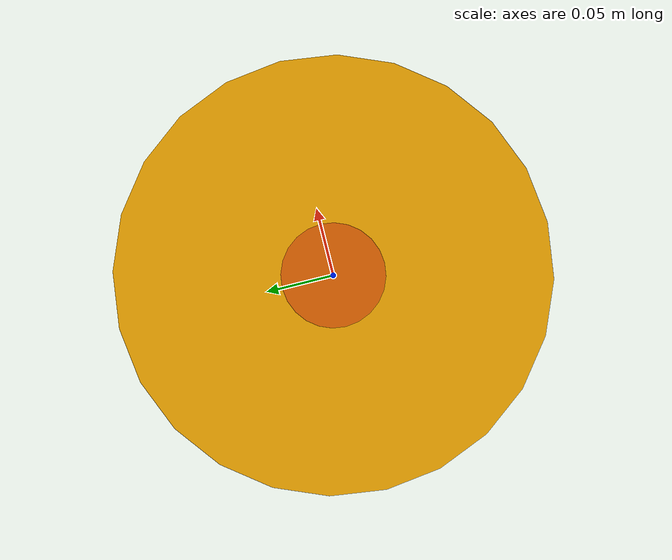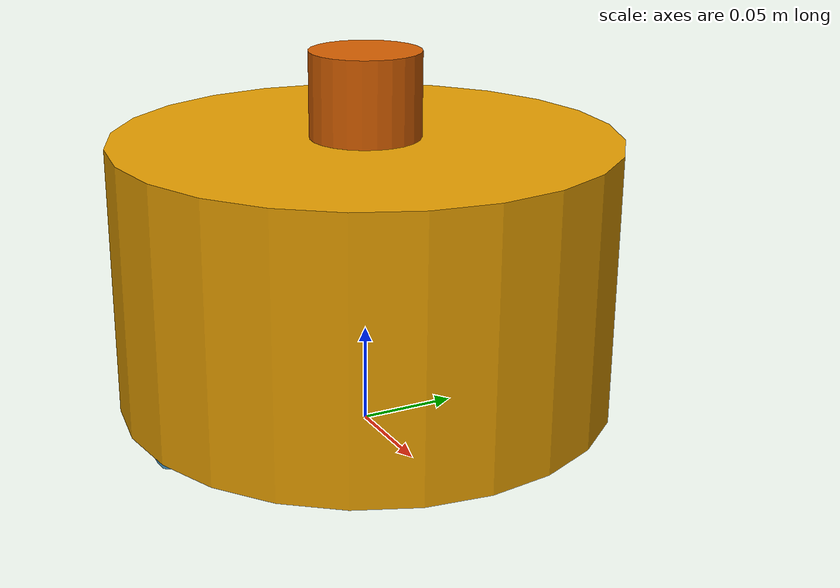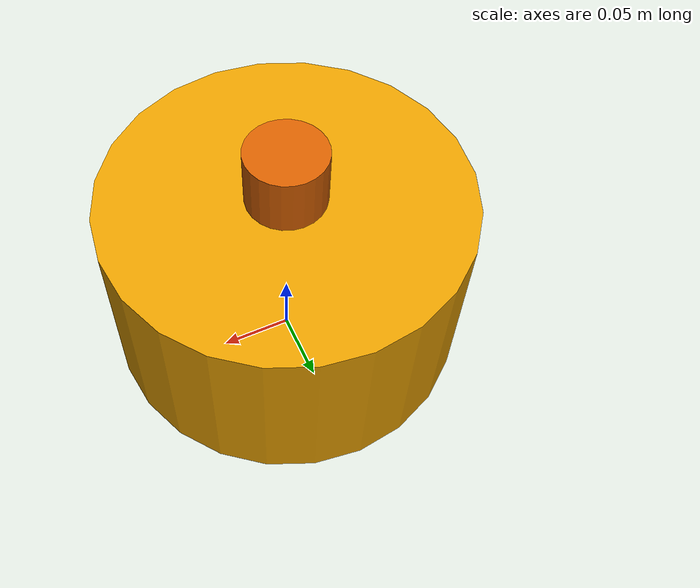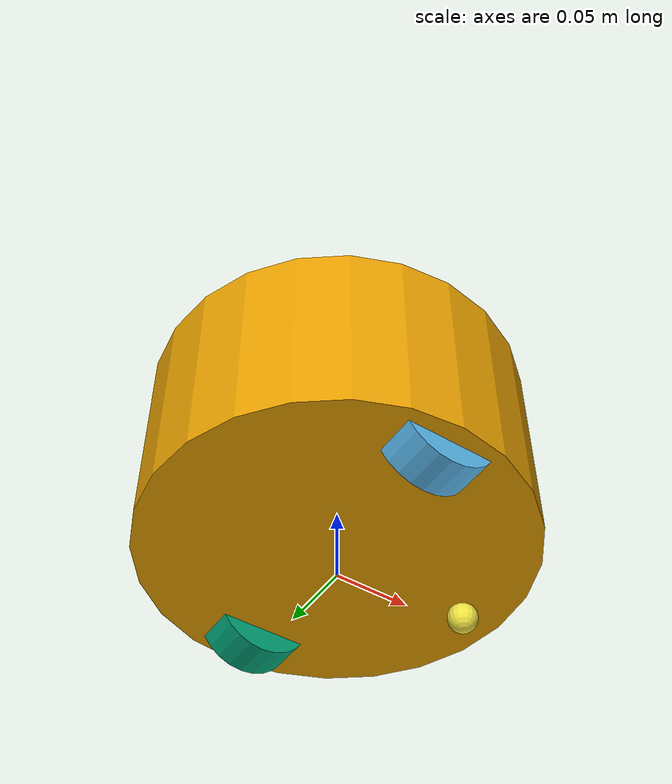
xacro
<?xml version="1.0"?>
    <robot xmlns:xacro="http://www.ros.org/wiki/xacro" name="aspi">
        <xacro:property name="body_radius" value="0.125" />
        <xacro:property name="bodylen" value="0.134" />
        <xacro:property name="wheel_radius" value="0.0335" />
        <xacro:property name="wheel_width" value="0.027" />
        <xacro:property name="wheel_y" value="0.0996" />
        <xacro:property name="body_bottom" value="0.016" />

        <link name="base_link">
            <visual>
                <geometry>
                    <cylinder radius="${body_radius}" length="${bodylen}"/>
                </geometry>
                <origin xyz="0 0 ${body_bottom + bodylen / 2}" rpy="0 0 0"/>
            </visual>
        </link>

        <xacro:macro name="wheel" params="prefix reflect">
            <link name="${prefix}_wheel_link">
                <visual>
                    <origin rpy="${pi/2} 0 0"/>
                    <geometry>
                        <cylinder radius="${wheel_radius}" length="${wheel_width}"/>
                    </geometry>
                </visual>
            </link>

            <joint name="${prefix}_wheel_joint" type="continuous">
                <parent link="base_link"/>
                <child link="${prefix}_wheel_link"/>
                <origin xyz="0 ${reflect * wheel_y} ${wheel_radius}" />
                <axis xyz="0 1 0"/>
            </joint>
        </xacro:macro>

        <xacro:wheel prefix="right" reflect="-1" />
        <xacro:wheel prefix="left" reflect="1" />

        <link name="caster_link">
            <visual>
                <geometry>
                    <sphere radius="0.01"/>
                </geometry>
            </visual>
        </link>

        <joint name="caster_joint" type="fixed">
            <parent link="base_link"/>
            <child link="caster_link"/>
            <origin xyz="0.095 0 0.01"/>
        </joint>

        <link name="imu_link">
            <visual>
                <geometry>
                    <box size="0.015 0.026 0.011"/>
                </geometry>
            </visual>
        </link>

        <joint name="imu_joint" type="fixed">
            <parent link="base_link"/>
            <child link="imu_link"/>
            <!-- z = 0.07 (étage) + 0.003 (épaisseur) + 0.0055 (moitié de l'épaisseur de l'imu) -->
            <origin xyz="0 0 0.0785"/>
        </joint>

        <link name="laser">
            <visual>
                <geometry>
                    <cylinder radius="0.0275" length="0.042"/>
                </geometry>
                <origin xyz="0 0 -0.0115"/>
            </visual>
        </link>

        <joint name="laser_joint" type="fixed">
            <parent link="base_link"/>
            <child link="laser"/>
            <origin xyz="0 0 ${body_bottom + bodylen + 0.023 + 0.0095}"/>
        </joint>
    </robot>
